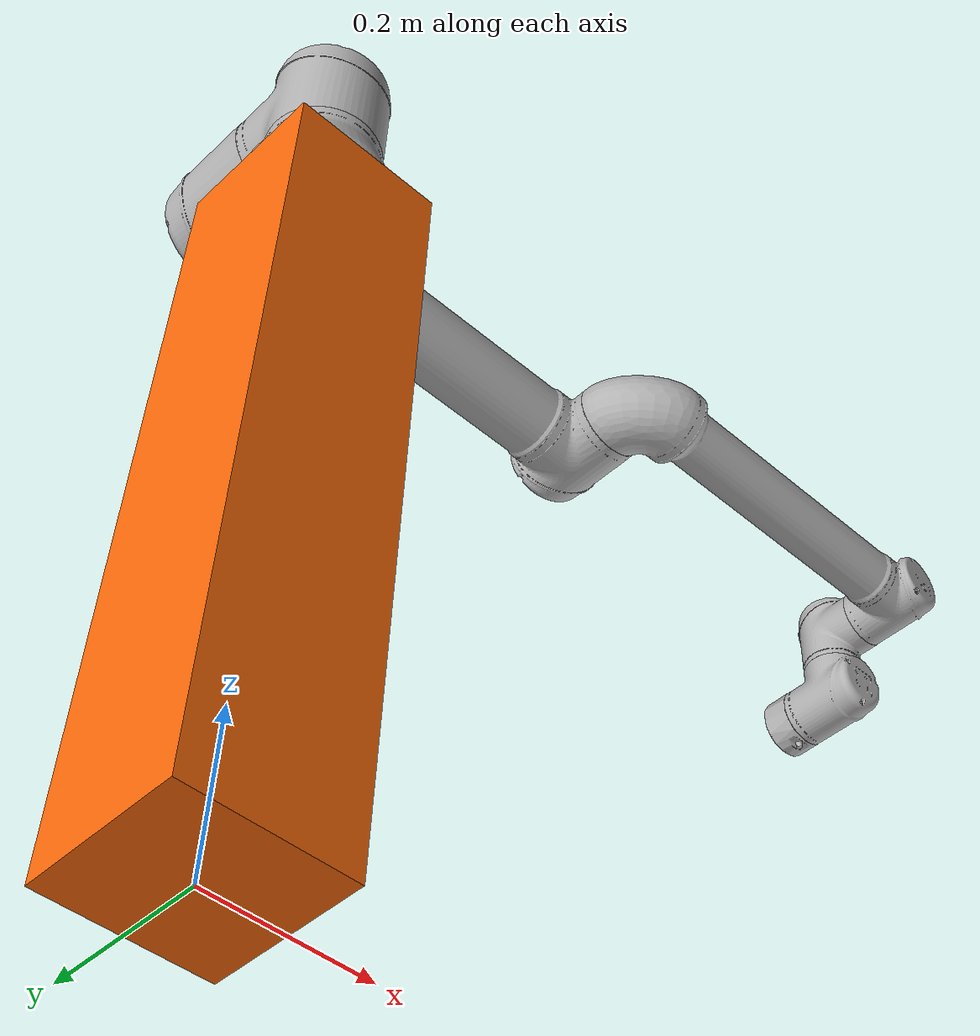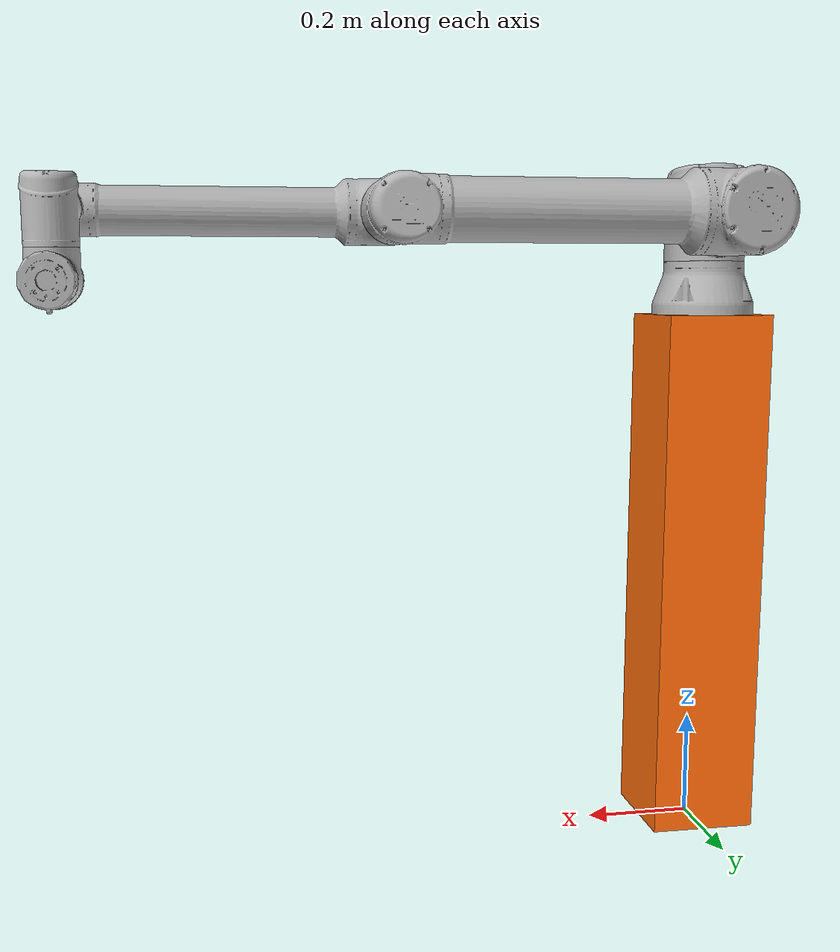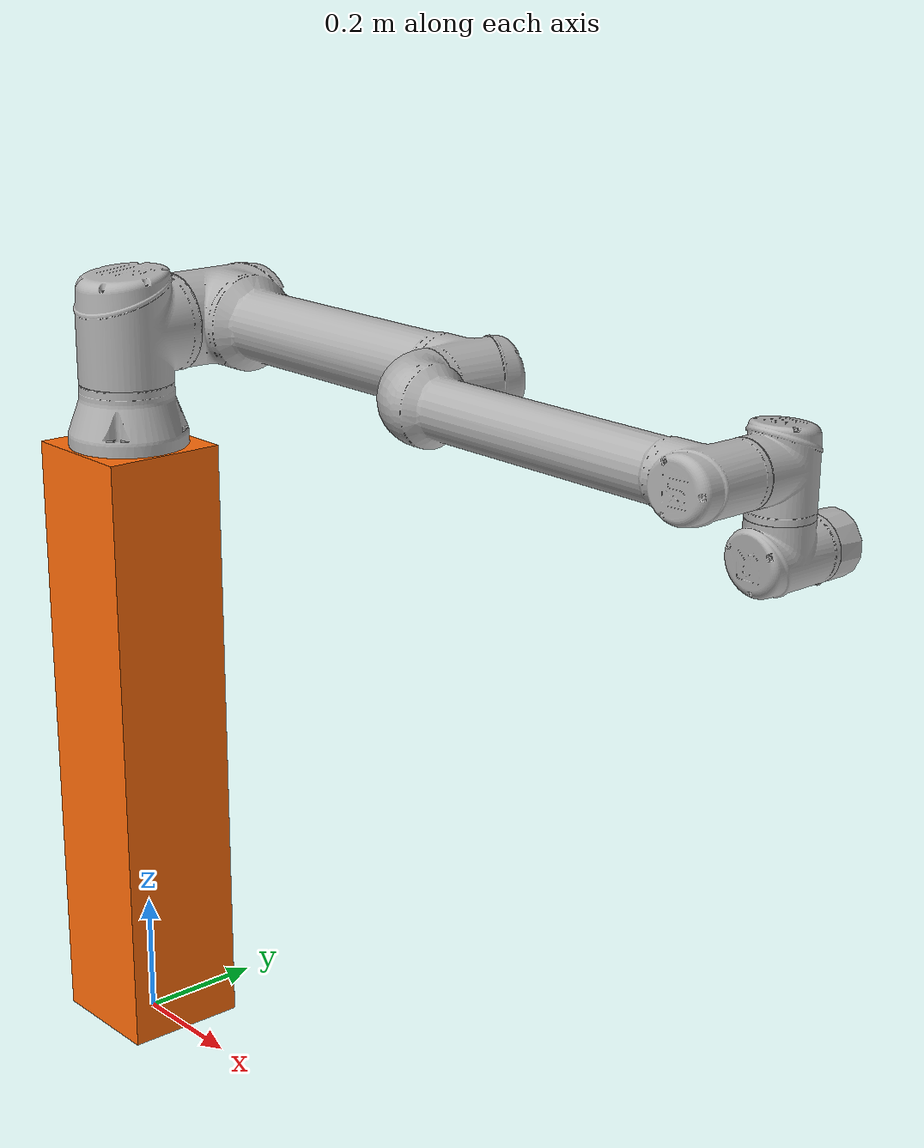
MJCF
<mujoco>
	<compiler angle="radian" meshdir="../../meshes/" />
	<include file="include/asset/ur10e.xml" />
	<include file="include/default/ur10e.xml" />
	<worldbody>
		<body name="ur10e">
			<geom size="0.1 0.1 0.5" pos="0 0 0.5" type="box" contype="0" conaffinity="0" group="1" density="0" rgba="1 0.423529 0.0392157 1" />
			<geom size="0.1 0.1 0.5" pos="0 0 0.5" type="box" rgba="1 0.423529 0.0392157 1" />
			<geom pos="0 0 1" quat="-1 0 0 0" type="mesh" contype="0" conaffinity="0" group="1" density="0" rgba="0.7 0.7 0.7 1" mesh="base" />
			<geom pos="0 0 1" quat="-1 0 0 0" type="mesh" rgba="0.7 0.7 0.7 1" mesh="base" />
			<body gravcomp="1" name="ur10e_shoulder_link" pos="0 0 1.181" quat="0 0 0 1">
				<inertial pos="0 0 0" mass="7.778" diaginertia="0.0314743 0.0314743 0.0218756" />
				<joint name="ur10e_shoulder_pan_joint" pos="0 0 0" axis="0 0 1" limited="true" range="-6.28319 6.28319" />
				<geom quat="0 0 0 1" type="mesh" contype="0" conaffinity="0" group="1" density="0" rgba="0.7 0.7 0.7 1" mesh="shoulder" />
				<geom quat="0 0 0 1" type="mesh" rgba="0.7 0.7 0.7 1" mesh="shoulder" />
				<body gravcomp="1" name="ur10e_upper_arm_link" pos="0 0 .001" quat="0.707107 0.707107 0 0">
					<inertial pos="-0.306 0 0.175" mass="12.93" diaginertia="0.421754 0.421754 0.0363656" />
					<joint name="ur10e_shoulder_lift_joint" pos="0 0 0" axis="0 0 1" limited="true" range="-6.28319 6.28319" />
					<geom pos="0 0 0.1762" quat="0.5 0.5 -0.5 -0.5" type="mesh" contype="0" conaffinity="0" group="1" density="0" rgba="0.7 0.7 0.7 1" mesh="upperarm" />
					<geom pos="0 0 0.1762" quat="0.5 0.5 -0.5 -0.5" type="mesh" rgba="0.7 0.7 0.7 1" mesh="upperarm" />
					<body gravcomp="1" name="ur10e_forearm_link" pos="-0.6127 0 0">
						<inertial pos="-0.285775 0 0.0393" mass="3.87" diaginertia="0.110793 0.110793 0.0108844" />
						<joint name="ur10e_elbow_joint" pos="0 0 0" axis="0 0 1" limited="true" range="-3.14159 3.14159" />
						<geom pos="0 0 0.0393" quat="0.5 0.5 -0.5 -0.5" type="mesh" contype="0" conaffinity="0" group="1" density="0" rgba="0.7 0.7 0.7 1" mesh="forearm" />
						<geom pos="0 0 0.0393" quat="0.5 0.5 -0.5 -0.5" type="mesh" rgba="0.7 0.7 0.7 1" mesh="forearm" />
						<body gravcomp="1" name="ur10e_wrist_1_link" pos="-0.57155 0 0.17415">
							<inertial pos="0 0 0" quat="0.5 0.5 -0.5 0.5" mass="1.96" diaginertia="0.0055125 0.00510825 0.00510825" />
							<joint name="ur10e_wrist_1_joint" pos="0 0 0" axis="0 0 1" limited="true" range="-6.28319 6.28319" />
							<geom pos="0 0 -0.135" quat="0.707107 0.707107 0 0" type="mesh" contype="0" conaffinity="0" group="1" density="0" rgba="0.7 0.7 0.7 1" mesh="wrist1" />
							<geom pos="0 0 -0.135" quat="0.707107 0.707107 0 0" type="mesh" rgba="0.7 0.7 0.7 1" mesh="wrist1" />
							<body gravcomp="1" name="ur10e_wrist_2_link" pos="0 -0.11985 -2.45816e-11" quat="0.707107 0.707107 0 0">
								<inertial pos="0 0 0" quat="0.5 0.5 -0.5 0.5" mass="1.96" diaginertia="0.0055125 0.00510825 0.00510825" />
								<joint name="ur10e_wrist_2_joint" pos="0 0 0" axis="0 0 1" limited="true" range="-6.28319 6.28319" />
								<geom pos="0 0 -0.12" type="mesh" contype="0" conaffinity="0" group="1" density="0" rgba="0.7 0.7 0.7 1" mesh="wrist2" />
								<geom pos="0 0 -0.12" type="mesh" rgba="0.7 0.7 0.7 1" mesh="wrist2" />
								<body gravcomp="1" name="ur10e_wrist_3_link" pos="0 0.11655 -2.39048e-11" quat="0.707107 -0.707107 0 0">
									<inertial pos="0.00921033 -0.00154269 0.0406794" quat="0.997917 0.0112036 0.0633411 0.00496464" mass="0.476" diaginertia="0.00202906 0.00198968 0.000337265" />
									<joint name="ur10e_wrist_3_joint" pos="0 0 0" axis="0 0 1" limited="true" range="-6.28319 6.28319" />
									<geom pos="0 0 -0.1168" quat="0.707107 0.707107 0 0" type="mesh" contype="0" conaffinity="0" group="1" density="0" rgba="0.7 0.7 0.7 1" mesh="wrist3" />
									<geom pos="0 0 -0.1168" quat="0.707107 0.707107 0 0" type="mesh" rgba="0.7 0.7 0.7 1" mesh="wrist3" />
								</body>
							</body>
						</body>
					</body>
				</body>
			</body>
		</body>
	</worldbody>
	<actuator>
		<position name="ur10e_shoulder_pan_joint_A" joint="ur10e_shoulder_pan_joint" class="ur10e_shoulder_pan" />
		<position name="ur10e_shoulder_lift_joint_A" joint="ur10e_shoulder_lift_joint" class="ur10e_shoulder_lift" />
		<position name="ur10e_elbow_joint_A" joint="ur10e_elbow_joint" class="ur10e_elbow" />
		<position name="ur10e_wrist_1_joint_A" joint="ur10e_wrist_1_joint" class="ur10e_wrist" />
		<position name="ur10e_wrist_2_joint_A" joint="ur10e_wrist_2_joint" class="ur10e_wrist" />
		<position name="ur10e_wrist_3_joint_A" joint="ur10e_wrist_3_joint" class="ur10e_wrist" />
	</actuator>
</mujoco>

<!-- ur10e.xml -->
<mujoco>
	<asset>
		<mesh name="base" file="ur10e/collision/base.stl" />
		<mesh name="shoulder" file="ur10e/collision/shoulder.stl" />
		<mesh name="upperarm" file="ur10e/collision/upperarm.stl" />
		<mesh name="forearm" file="ur10e/collision/forearm.stl" />
		<mesh name="wrist1" file="ur10e/collision/wrist1.stl" />
		<mesh name="wrist2" file="ur10e/collision/wrist2.stl" />
		<mesh name="wrist3" file="ur10e/collision/wrist3.stl" />
	</asset>
</mujoco>

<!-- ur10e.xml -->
<mujoco>
	<default>
		<default class="ur10e">
			<default class="ur10e_shoulder">
				<position ctrlrange="-6.28319 6.28319" forcerange="-330 330" />
				<default class="ur10e_shoulder_pan">
					<position kp="50" />
				</default>
				<default class="ur10e_shoulder_lift">
					<position kp="50" />
				</default>
			</default>
			<default class="ur10e_elbow">
				<position ctrlrange="-3.14159 3.14159" kp="10" forcerange="-150 150" />
			</default>
			<default class="ur10e_wrist">
				<position ctrlrange="-6.28319 6.28319" kp="5" forcerange="-56 56" />
			</default>
		</default>
	</default>
</mujoco>
